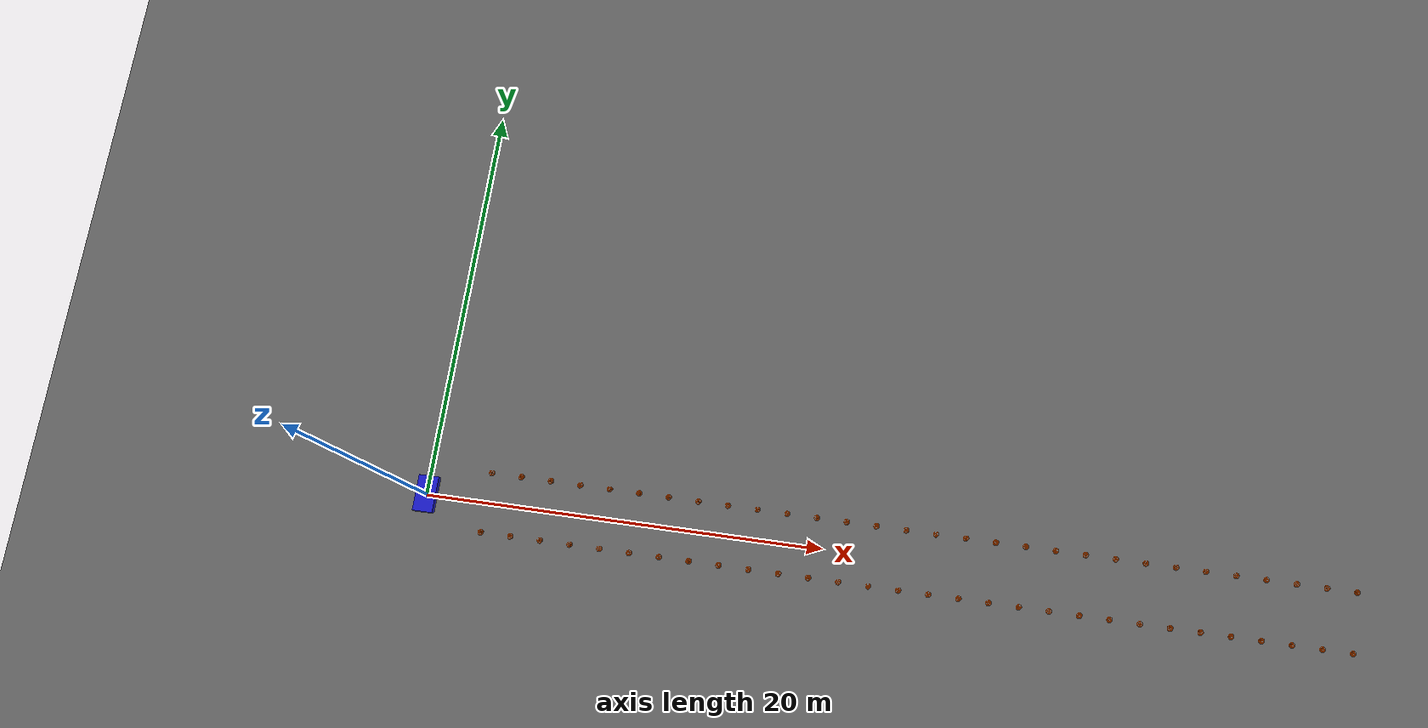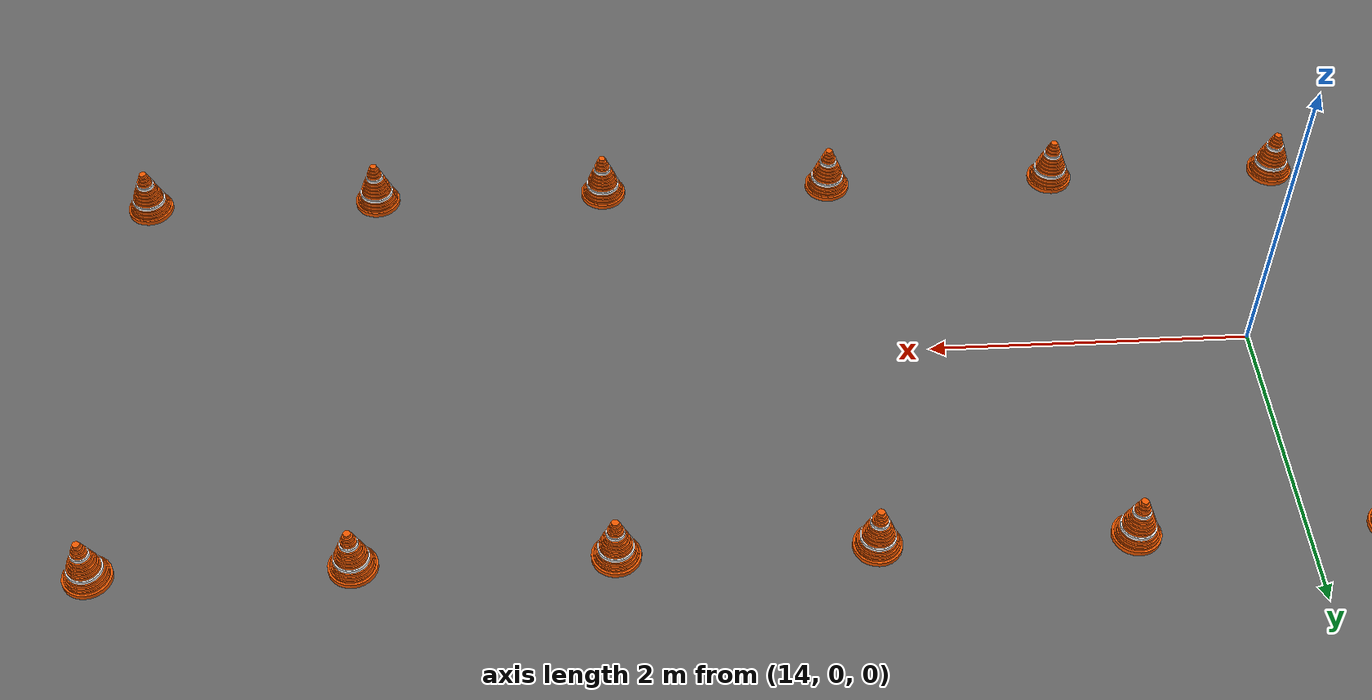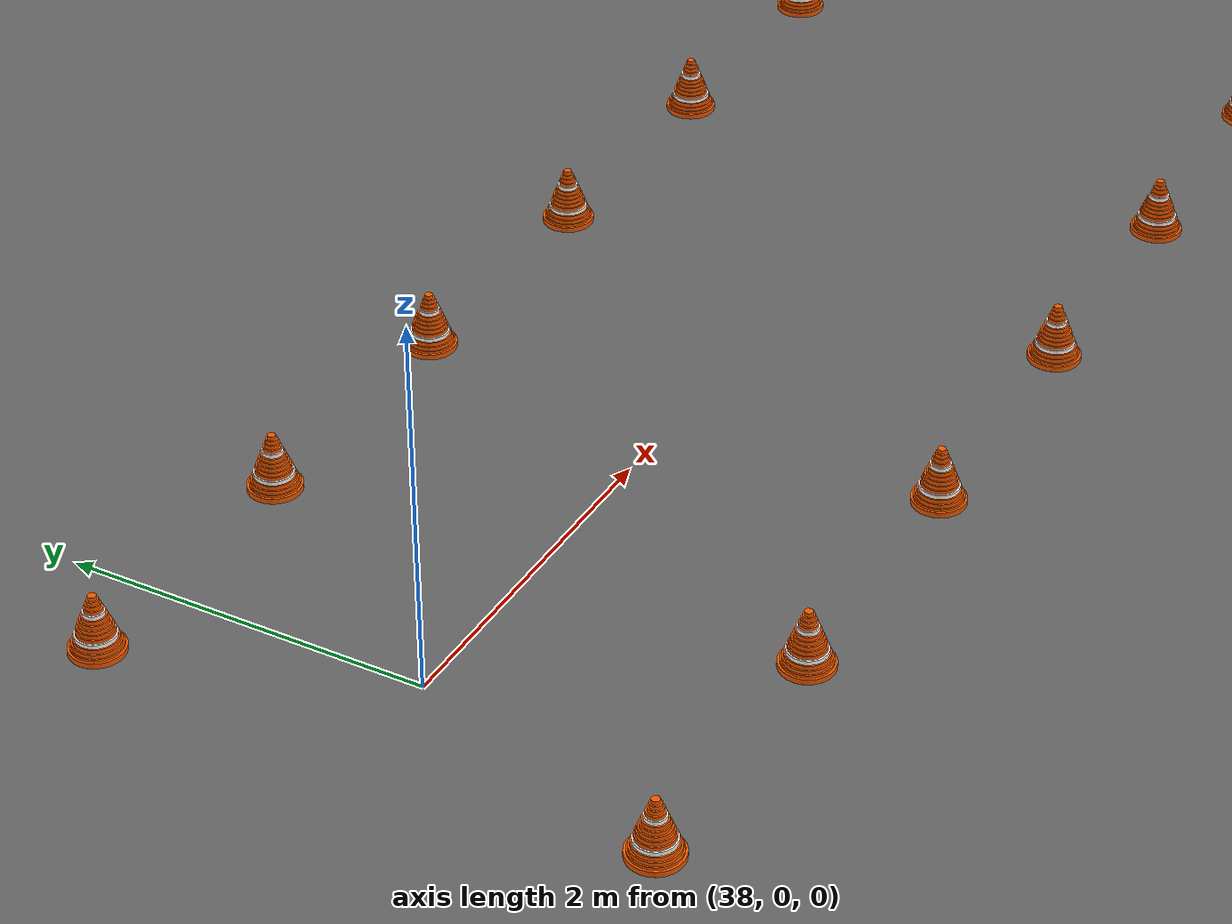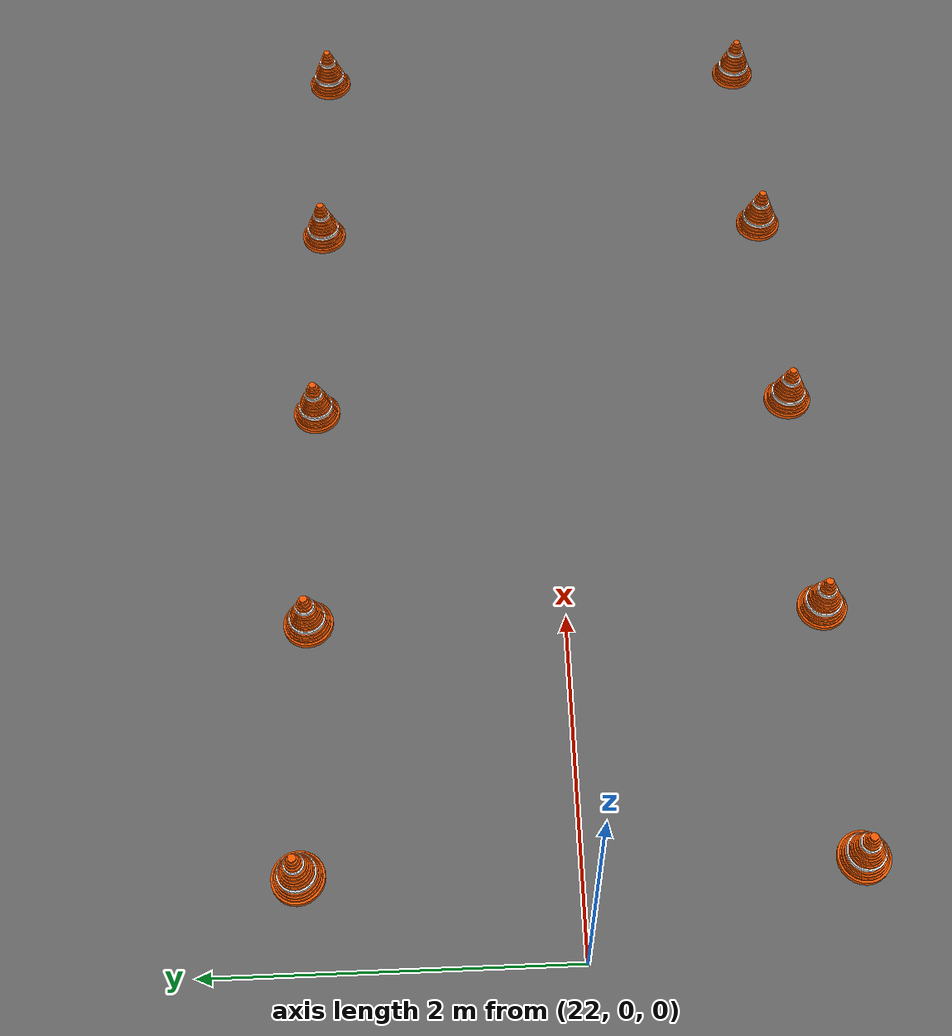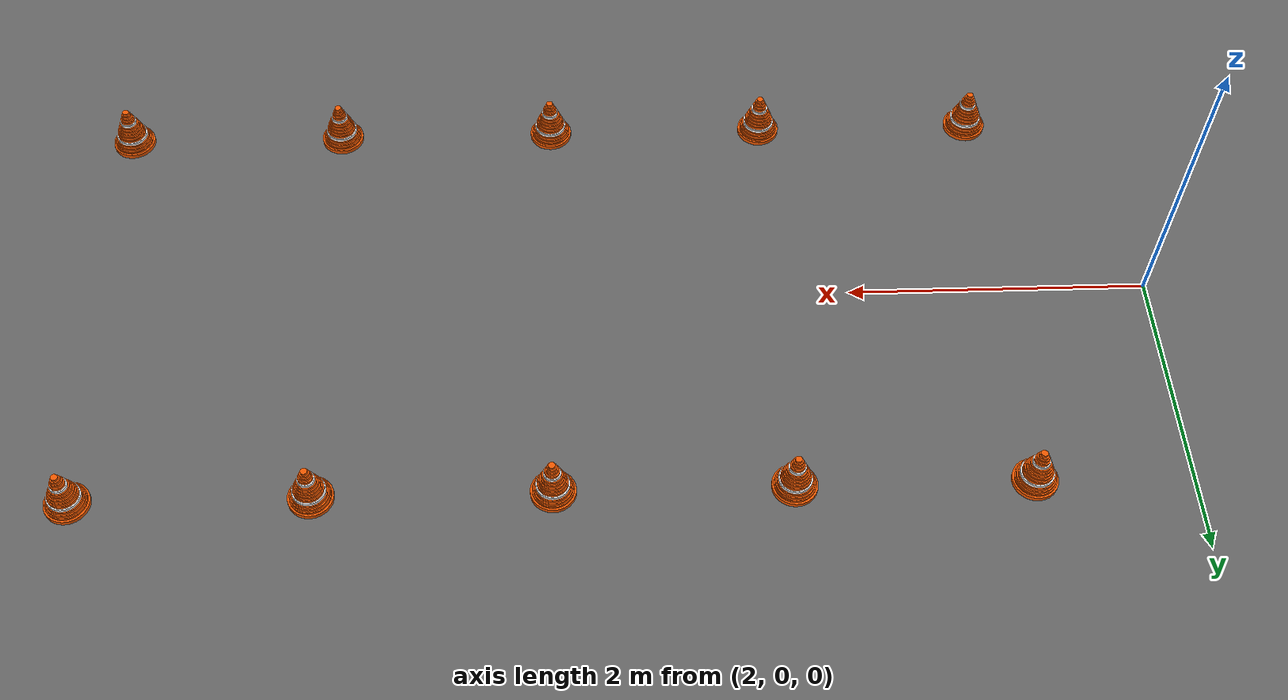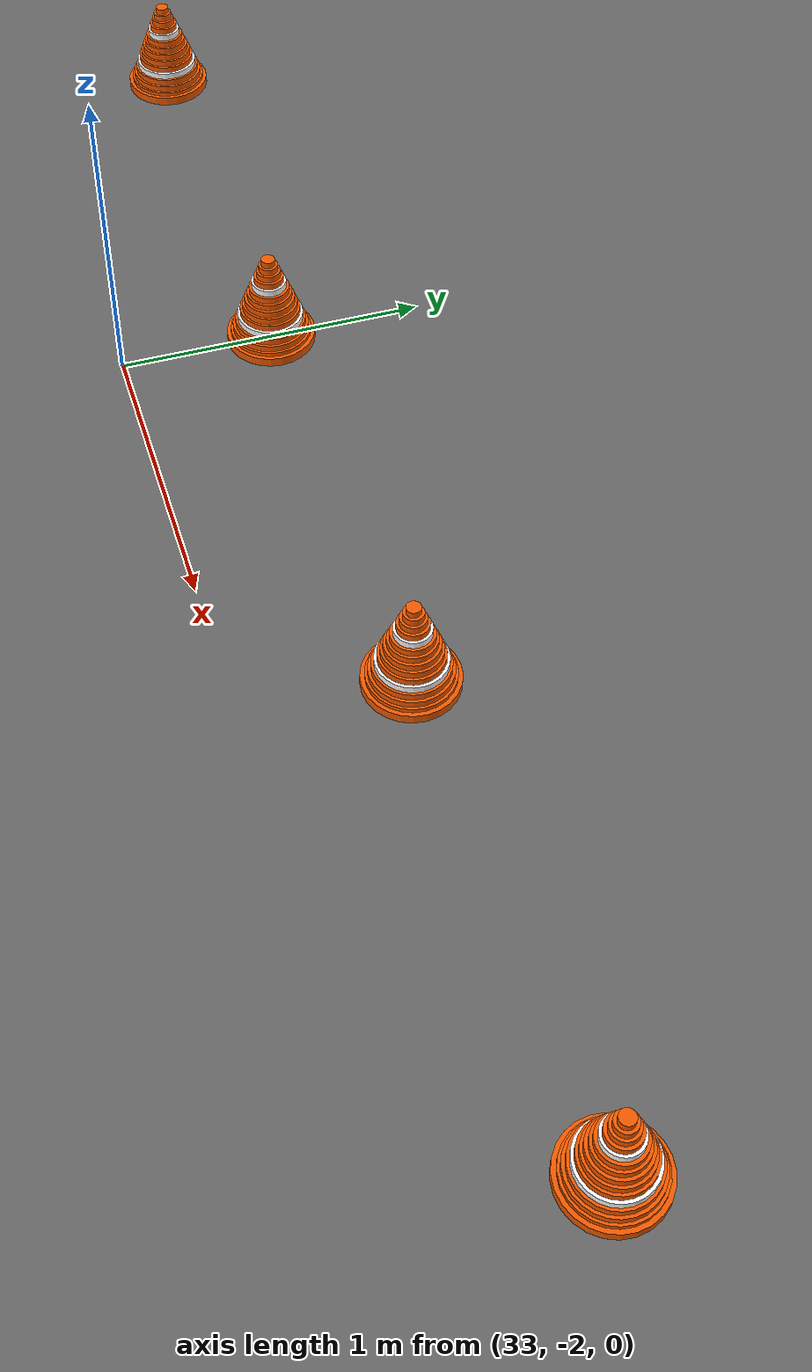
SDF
<?xml version="1.0"?>
<sdf version="1.6">
<world name="fasttube_track">

  <physics type="ode">
    <real_time_update_rate>1000</real_time_update_rate>
    <max_step_size>0.001</max_step_size>
  </physics>

  <light name="sun" type="directional">
    <cast_shadows>true</cast_shadows>
    <pose>0 0 20 0 0 0</pose>
    <diffuse>0.9 0.9 0.9 1</diffuse>
    <specular>0.2 0.2 0.2 1</specular>
    <direction>-0.5 0.1 -0.9</direction>
  </light>

  <model name="ground">
    <static>true</static>
    <link name="link">
      <collision name="col">
        <geometry><plane><normal>0 0 1</normal><size>200 200</size></plane></geometry>
      </collision>
      <visual name="vis">
        <geometry><plane><normal>0 0 1</normal><size>200 200</size></plane></geometry>
        <material>
          <ambient>0.3 0.3 0.3 1</ambient>
          <diffuse>0.4 0.4 0.4 1</diffuse>
        </material>
      </visual>
    </link>
  </model>

  <!-- Vehicle / LiDAR origin marker -->
  <model name="vehicle">
    <static>true</static>
    <pose>0.000 0.000 0 0 0 1.5708</pose>
    <link name="body">
      <!-- Car body: 1.8 m long, 1.0 m wide, 0.4 m tall → top at z=0.4 -->
      <visual name="chassis">
        <pose>0 0 0.2 0 0 0</pose>
        <geometry><box><size>1.8 1.0 0.4</size></box></geometry>
        <material><ambient>0.1 0.1 0.8 1</ambient><diffuse>0.1 0.1 0.8 1</diffuse></material>
      </visual>
      <!-- LiDAR mount bracket on roof -->
      <visual name="lidar_mount">
        <pose>0 0 0.43 0 0 0</pose>
        <geometry><cylinder><radius>0.04</radius><length>0.06</length></cylinder></geometry>
        <material><ambient>0.3 0.3 0.3 1</ambient><diffuse>0.3 0.3 0.3 1</diffuse></material>
      </visual>
      <!-- LiDAR sensor: sphere resting on mount, centre at z=0.5 = LIDAR_HEIGHT -->
      <visual name="lidar_sensor">
        <pose>0 0 0.5 0 0 0</pose>
        <geometry><sphere><radius>0.05</radius></sphere></geometry>
        <material><ambient>1 1 0 1</ambient><diffuse>1 1 0 1</diffuse></material>
      </visual>
    </link>
  </model>

  <!-- 30 cone pairs | lateral ±1.5 m | spacing 1.5 m -->
  <include>
    <name>cone_left_00</name>
    <uri>model://cone</uri>
    <pose>3.000 1.500 0 0 0 0</pose>
  </include>
  <include>
    <name>cone_right_00</name>
    <uri>model://cone</uri>
    <pose>3.000 -1.500 0 0 0 0</pose>
  </include>
  <include>
    <name>cone_left_01</name>
    <uri>model://cone</uri>
    <pose>4.500 1.500 0 0 0 0</pose>
  </include>
  <include>
    <name>cone_right_01</name>
    <uri>model://cone</uri>
    <pose>4.500 -1.500 0 0 0 0</pose>
  </include>
  <include>
    <name>cone_left_02</name>
    <uri>model://cone</uri>
    <pose>6.000 1.500 0 0 0 0</pose>
  </include>
  <include>
    <name>cone_right_02</name>
    <uri>model://cone</uri>
    <pose>6.000 -1.500 0 0 0 0</pose>
  </include>
  <include>
    <name>cone_left_03</name>
    <uri>model://cone</uri>
    <pose>7.500 1.500 0 0 0 0</pose>
  </include>
  <include>
    <name>cone_right_03</name>
    <uri>model://cone</uri>
    <pose>7.500 -1.500 0 0 0 0</pose>
  </include>
  <include>
    <name>cone_left_04</name>
    <uri>model://cone</uri>
    <pose>9.000 1.500 0 0 0 0</pose>
  </include>
  <include>
    <name>cone_right_04</name>
    <uri>model://cone</uri>
    <pose>9.000 -1.500 0 0 0 0</pose>
  </include>
  <include>
    <name>cone_left_05</name>
    <uri>model://cone</uri>
    <pose>10.500 1.500 0 0 0 0</pose>
  </include>
  <include>
    <name>cone_right_05</name>
    <uri>model://cone</uri>
    <pose>10.500 -1.500 0 0 0 0</pose>
  </include>
  <include>
    <name>cone_left_06</name>
    <uri>model://cone</uri>
    <pose>12.000 1.500 0 0 0 0</pose>
  </include>
  <include>
    <name>cone_right_06</name>
    <uri>model://cone</uri>
    <pose>12.000 -1.500 0 0 0 0</pose>
  </include>
  <include>
    <name>cone_left_07</name>
    <uri>model://cone</uri>
    <pose>13.500 1.500 0 0 0 0</pose>
  </include>
  <include>
    <name>cone_right_07</name>
    <uri>model://cone</uri>
    <pose>13.500 -1.500 0 0 0 0</pose>
  </include>
  <include>
    <name>cone_left_08</name>
    <uri>model://cone</uri>
    <pose>15.000 1.500 0 0 0 0</pose>
  </include>
  <include>
    <name>cone_right_08</name>
    <uri>model://cone</uri>
    <pose>15.000 -1.500 0 0 0 0</pose>
  </include>
  <include>
    <name>cone_left_09</name>
    <uri>model://cone</uri>
    <pose>16.500 1.500 0 0 0 0</pose>
  </include>
  <include>
    <name>cone_right_09</name>
    <uri>model://cone</uri>
    <pose>16.500 -1.500 0 0 0 0</pose>
  </include>
  <include>
    <name>cone_left_10</name>
    <uri>model://cone</uri>
    <pose>18.000 1.500 0 0 0 0</pose>
  </include>
  <include>
    <name>cone_right_10</name>
    <uri>model://cone</uri>
    <pose>18.000 -1.500 0 0 0 0</pose>
  </include>
  <include>
    <name>cone_left_11</name>
    <uri>model://cone</uri>
    <pose>19.500 1.500 0 0 0 0</pose>
  </include>
  <include>
    <name>cone_right_11</name>
    <uri>model://cone</uri>
    <pose>19.500 -1.500 0 0 0 0</pose>
  </include>
  <include>
    <name>cone_left_12</name>
    <uri>model://cone</uri>
    <pose>21.000 1.500 0 0 0 0</pose>
  </include>
  <include>
    <name>cone_right_12</name>
    <uri>model://cone</uri>
    <pose>21.000 -1.500 0 0 0 0</pose>
  </include>
  <include>
    <name>cone_left_13</name>
    <uri>model://cone</uri>
    <pose>22.500 1.500 0 0 0 0</pose>
  </include>
  <include>
    <name>cone_right_13</name>
    <uri>model://cone</uri>
    <pose>22.500 -1.500 0 0 0 0</pose>
  </include>
  <include>
    <name>cone_left_14</name>
    <uri>model://cone</uri>
    <pose>24.000 1.500 0 0 0 0</pose>
  </include>
  <include>
    <name>cone_right_14</name>
    <uri>model://cone</uri>
    <pose>24.000 -1.500 0 0 0 0</pose>
  </include>
  <include>
    <name>cone_left_15</name>
    <uri>model://cone</uri>
    <pose>25.500 1.500 0 0 0 0</pose>
  </include>
  <include>
    <name>cone_right_15</name>
    <uri>model://cone</uri>
    <pose>25.500 -1.500 0 0 0 0</pose>
  </include>
  <include>
    <name>cone_left_16</name>
    <uri>model://cone</uri>
    <pose>27.000 1.500 0 0 0 0</pose>
  </include>
  <include>
    <name>cone_right_16</name>
    <uri>model://cone</uri>
    <pose>27.000 -1.500 0 0 0 0</pose>
  </include>
  <include>
    <name>cone_left_17</name>
    <uri>model://cone</uri>
    <pose>28.500 1.500 0 0 0 0</pose>
  </include>
  <include>
    <name>cone_right_17</name>
    <uri>model://cone</uri>
    <pose>28.500 -1.500 0 0 0 0</pose>
  </include>
  <include>
    <name>cone_left_18</name>
    <uri>model://cone</uri>
    <pose>30.000 1.500 0 0 0 0</pose>
  </include>
  <include>
    <name>cone_right_18</name>
    <uri>model://cone</uri>
    <pose>30.000 -1.500 0 0 0 0</pose>
  </include>
  <include>
    <name>cone_left_19</name>
    <uri>model://cone</uri>
    <pose>31.500 1.500 0 0 0 0</pose>
  </include>
  <include>
    <name>cone_right_19</name>
    <uri>model://cone</uri>
    <pose>31.500 -1.500 0 0 0 0</pose>
  </include>
  <include>
    <name>cone_left_20</name>
    <uri>model://cone</uri>
    <pose>33.000 1.500 0 0 0 0</pose>
  </include>
  <include>
    <name>cone_right_20</name>
    <uri>model://cone</uri>
    <pose>33.000 -1.500 0 0 0 0</pose>
  </include>
  <include>
    <name>cone_left_21</name>
    <uri>model://cone</uri>
    <pose>34.500 1.500 0 0 0 0</pose>
  </include>
  <include>
    <name>cone_right_21</name>
    <uri>model://cone</uri>
    <pose>34.500 -1.500 0 0 0 0</pose>
  </include>
  <include>
    <name>cone_left_22</name>
    <uri>model://cone</uri>
    <pose>36.000 1.500 0 0 0 0</pose>
  </include>
  <include>
    <name>cone_right_22</name>
    <uri>model://cone</uri>
    <pose>36.000 -1.500 0 0 0 0</pose>
  </include>
  <include>
    <name>cone_left_23</name>
    <uri>model://cone</uri>
    <pose>37.500 1.500 0 0 0 0</pose>
  </include>
  <include>
    <name>cone_right_23</name>
    <uri>model://cone</uri>
    <pose>37.500 -1.500 0 0 0 0</pose>
  </include>
  <include>
    <name>cone_left_24</name>
    <uri>model://cone</uri>
    <pose>39.000 1.500 0 0 0 0</pose>
  </include>
  <include>
    <name>cone_right_24</name>
    <uri>model://cone</uri>
    <pose>39.000 -1.500 0 0 0 0</pose>
  </include>
  <include>
    <name>cone_left_25</name>
    <uri>model://cone</uri>
    <pose>40.500 1.500 0 0 0 0</pose>
  </include>
  <include>
    <name>cone_right_25</name>
    <uri>model://cone</uri>
    <pose>40.500 -1.500 0 0 0 0</pose>
  </include>
  <include>
    <name>cone_left_26</name>
    <uri>model://cone</uri>
    <pose>42.000 1.500 0 0 0 0</pose>
  </include>
  <include>
    <name>cone_right_26</name>
    <uri>model://cone</uri>
    <pose>42.000 -1.500 0 0 0 0</pose>
  </include>
  <include>
    <name>cone_left_27</name>
    <uri>model://cone</uri>
    <pose>43.500 1.500 0 0 0 0</pose>
  </include>
  <include>
    <name>cone_right_27</name>
    <uri>model://cone</uri>
    <pose>43.500 -1.500 0 0 0 0</pose>
  </include>
  <include>
    <name>cone_left_28</name>
    <uri>model://cone</uri>
    <pose>45.000 1.500 0 0 0 0</pose>
  </include>
  <include>
    <name>cone_right_28</name>
    <uri>model://cone</uri>
    <pose>45.000 -1.500 0 0 0 0</pose>
  </include>
  <include>
    <name>cone_left_29</name>
    <uri>model://cone</uri>
    <pose>46.500 1.500 0 0 0 0</pose>
  </include>
  <include>
    <name>cone_right_29</name>
    <uri>model://cone</uri>
    <pose>46.500 -1.500 0 0 0 0</pose>
  </include>

</world>
</sdf>

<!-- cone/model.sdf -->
<sdf version="1.6">
  <model name="traffic_cone">
    <static>true</static>
    <link name="link">

      <!-- ── Collision ──────────────────────────────────────────────────── -->
      <collision name="col">
        <pose>0 0 0.1625 0 0 0</pose>
        <geometry>
          <cylinder><radius>0.085</radius><length>0.325</length></cylinder>
        </geometry>
      </collision>

      <!-- ── Base plate ────────────────────────────────────────────────── -->
      <visual name="base">
        <pose>0 0 0.015 0 0 0</pose>
        <geometry><cylinder><radius>0.145</radius><length>0.030</length></cylinder></geometry>
        <material><ambient>0.95 0.35 0.0 1</ambient><diffuse>0.95 0.35 0.0 1</diffuse></material>
      </visual>

      <!-- ── Cone body – 15 sections ───────────────────────────────────── -->
      <!-- i=0  z=0.011  r=0.141  orange -->
      <visual name="s00">
        <pose>0 0 0.011 0 0 0</pose>
        <geometry><cylinder><radius>0.141</radius><length>0.022</length></cylinder></geometry>
        <material><ambient>0.95 0.35 0.0 1</ambient><diffuse>0.95 0.35 0.0 1</diffuse></material>
      </visual>

      <!-- i=1  z=0.033  r=0.132  orange -->
      <visual name="s01">
        <pose>0 0 0.033 0 0 0</pose>
        <geometry><cylinder><radius>0.132</radius><length>0.022</length></cylinder></geometry>
        <material><ambient>0.95 0.35 0.0 1</ambient><diffuse>0.95 0.35 0.0 1</diffuse></material>
      </visual>

      <!-- i=2  z=0.054  r=0.124  orange -->
      <visual name="s02">
        <pose>0 0 0.054 0 0 0</pose>
        <geometry><cylinder><radius>0.124</radius><length>0.022</length></cylinder></geometry>
        <material><ambient>0.95 0.35 0.0 1</ambient><diffuse>0.95 0.35 0.0 1</diffuse></material>
      </visual>

      <!-- i=3  z=0.076  r=0.115  orange -->
      <visual name="s03">
        <pose>0 0 0.076 0 0 0</pose>
        <geometry><cylinder><radius>0.115</radius><length>0.022</length></cylinder></geometry>
        <material><ambient>0.95 0.35 0.0 1</ambient><diffuse>0.95 0.35 0.0 1</diffuse></material>
      </visual>

      <!-- i=4  z=0.098  r=0.107  WHITE stripe 1 -->
      <visual name="s04">
        <pose>0 0 0.098 0 0 0</pose>
        <geometry><cylinder><radius>0.107</radius><length>0.022</length></cylinder></geometry>
        <material><ambient>1.0 1.0 1.0 1</ambient><diffuse>1.0 1.0 1.0 1</diffuse></material>
      </visual>

      <!-- i=5  z=0.119  r=0.098  orange -->
      <visual name="s05">
        <pose>0 0 0.119 0 0 0</pose>
        <geometry><cylinder><radius>0.098</radius><length>0.022</length></cylinder></geometry>
        <material><ambient>0.95 0.35 0.0 1</ambient><diffuse>0.95 0.35 0.0 1</diffuse></material>
      </visual>

      <!-- i=6  z=0.141  r=0.090  orange -->
      <visual name="s06">
        <pose>0 0 0.141 0 0 0</pose>
        <geometry><cylinder><radius>0.090</radius><length>0.022</length></cylinder></geometry>
        <material><ambient>0.95 0.35 0.0 1</ambient><diffuse>0.95 0.35 0.0 1</diffuse></material>
      </visual>

      <!-- i=7  z=0.163  r=0.082  orange -->
      <visual name="s07">
        <pose>0 0 0.163 0 0 0</pose>
        <geometry><cylinder><radius>0.082</radius><length>0.022</length></cylinder></geometry>
        <material><ambient>0.95 0.35 0.0 1</ambient><diffuse>0.95 0.35 0.0 1</diffuse></material>
      </visual>

      <!-- i=8  z=0.184  r=0.073  orange -->
      <visual name="s08">
        <pose>0 0 0.184 0 0 0</pose>
        <geometry><cylinder><radius>0.073</radius><length>0.022</length></cylinder></geometry>
        <material><ambient>0.95 0.35 0.0 1</ambient><diffuse>0.95 0.35 0.0 1</diffuse></material>
      </visual>

      <!-- i=9  z=0.206  r=0.065  orange -->
      <visual name="s09">
        <pose>0 0 0.206 0 0 0</pose>
        <geometry><cylinder><radius>0.065</radius><length>0.022</length></cylinder></geometry>
        <material><ambient>0.95 0.35 0.0 1</ambient><diffuse>0.95 0.35 0.0 1</diffuse></material>
      </visual>

      <!-- i=10 z=0.228  r=0.056  WHITE stripe 2 -->
      <visual name="s10">
        <pose>0 0 0.228 0 0 0</pose>
        <geometry><cylinder><radius>0.056</radius><length>0.022</length></cylinder></geometry>
        <material><ambient>1.0 1.0 1.0 1</ambient><diffuse>1.0 1.0 1.0 1</diffuse></material>
      </visual>

      <!-- i=11 z=0.249  r=0.048  orange -->
      <visual name="s11">
        <pose>0 0 0.249 0 0 0</pose>
        <geometry><cylinder><radius>0.048</radius><length>0.022</length></cylinder></geometry>
        <material><ambient>0.95 0.35 0.0 1</ambient><diffuse>0.95 0.35 0.0 1</diffuse></material>
      </visual>

      <!-- i=12 z=0.271  r=0.039  orange -->
      <visual name="s12">
        <pose>0 0 0.271 0 0 0</pose>
        <geometry><cylinder><radius>0.039</radius><length>0.022</length></cylinder></geometry>
        <material><ambient>0.95 0.35 0.0 1</ambient><diffuse>0.95 0.35 0.0 1</diffuse></material>
      </visual>

      <!-- i=13 z=0.293  r=0.031  orange -->
      <visual name="s13">
        <pose>0 0 0.293 0 0 0</pose>
        <geometry><cylinder><radius>0.031</radius><length>0.022</length></cylinder></geometry>
        <material><ambient>0.95 0.35 0.0 1</ambient><diffuse>0.95 0.35 0.0 1</diffuse></material>
      </visual>

      <!-- i=14 z=0.314  r=0.022  orange (tip) -->
      <visual name="s14">
        <pose>0 0 0.314 0 0 0</pose>
        <geometry><cylinder><radius>0.022</radius><length>0.022</length></cylinder></geometry>
        <material><ambient>0.95 0.35 0.0 1</ambient><diffuse>0.95 0.35 0.0 1</diffuse></material>
      </visual>

    </link>
  </model>
</sdf>
